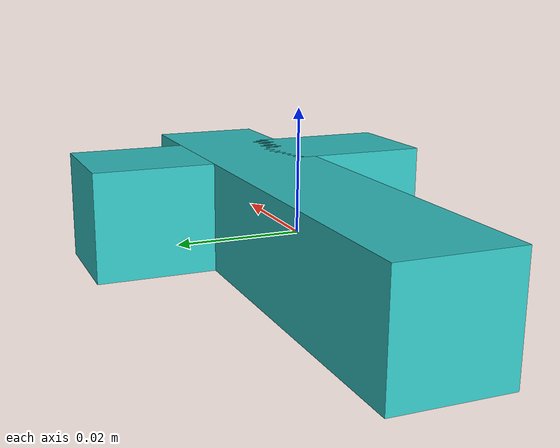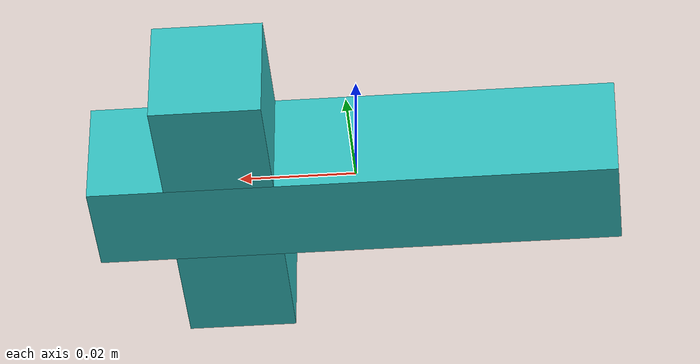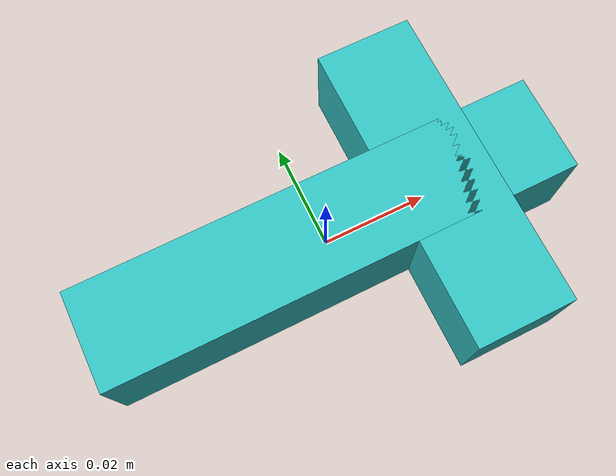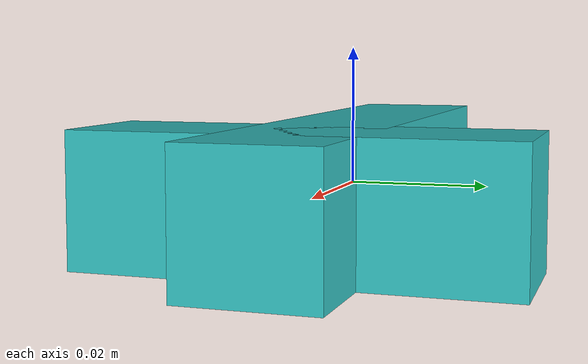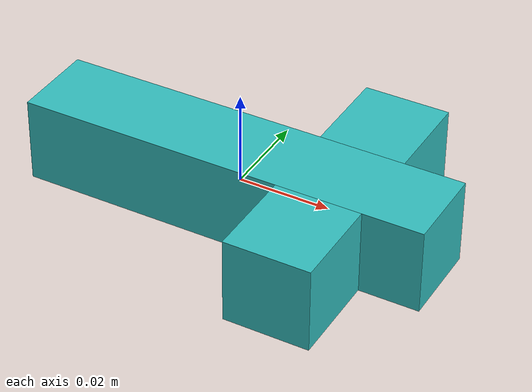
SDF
<?xml version='1.0'?>
<sdf version='1.6'>
  <model name='cross_small'>
    <link name='link'>
      <inertial>
        <mass>0.0633</mass>
        <inertia>
          <ixx>0.000047</ixx> <ixy>0</ixy> <ixz>0</ixz>
          <iyy>0.000047</iyy> <iyz>0</iyz>
          <izz>0.000095</izz>
        </inertia>
      </inertial>

      <visual name='stem_vis'>
        <geometry>
           <box><size>0.090000 0.018750 0.018750</size></box>
        </geometry>
        <material><script><name>Gazebo/Turquoise</name></script></material>
      </visual>
      <collision name='stem_col'>
        <geometry>
           <box><size>0.090000 0.018750 0.018750</size></box>
        </geometry>
        <surface>
           <friction><ode><mu>100.0</mu><mu2>100.0</mu2></ode></friction>
           <contact><ode><kp>100000.0</kp><kd>1.0</kd><min_depth>0.001</min_depth></ode></contact>
        </surface>
      </collision>

      <visual name='crossbar_vis'>
        <pose>0.022500 0.000000 0.000000 0 0 0</pose>
        <geometry>
           <box><size>0.018750 0.060000 0.018750</size></box>
        </geometry>
        <material><script><name>Gazebo/Turquoise</name></script></material>
      </visual>
      <collision name='crossbar_col'>
        <pose>0.022500 0.000000 0.000000 0 0 0</pose>
        <geometry>
           <box><size>0.018750 0.060000 0.018750</size></box>
        </geometry>
        <surface>
           <friction><ode><mu>100.0</mu><mu2>100.0</mu2></ode></friction>
           <contact><ode><kp>100000.0</kp><kd>1.0</kd><min_depth>0.001</min_depth></ode></contact>
        </surface>
      </collision>
    </link>
  </model>
</sdf>
